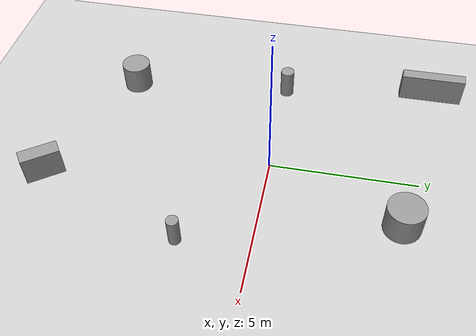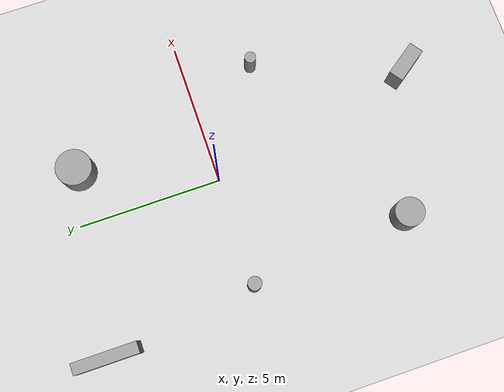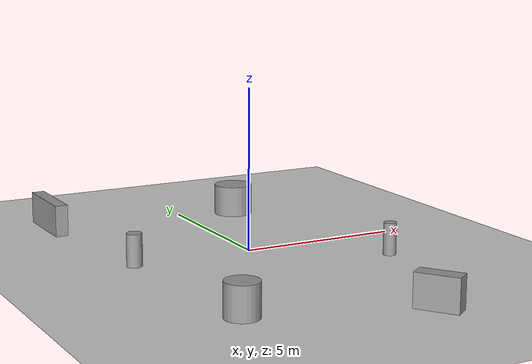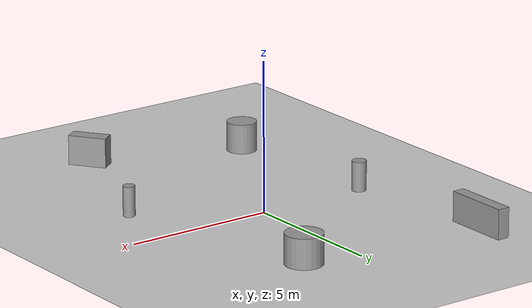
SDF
<sdf version="1.7">
 <world name="default">
  <light name="sun" type="directional">
   <pose>0 0 10 0 -0 0</pose>
   <diffuse>0.8 0.8 0.8 1</diffuse>
   <specular>0.2 0.2 0.2 1</specular>
   <attenuation>
    <range>1000</range>
    <constant>0.9</constant>
    <linear>0.01</linear>
    <quadratic>0.001</quadratic>
   </attenuation>
   <direction>-0.5 0.1 -0.9</direction>
   <spot><inner_angle>0</inner_angle><outer_angle>0</outer_angle><falloff>0</falloff></spot>
  </light>
  <model name="ground_plane">
   <static>1</static>
   <link name="link">
    <collision name="collision">
     <geometry><plane><normal>0 0 1</normal><size>100 100</size></plane></geometry>
     <surface>
      <contact><collide_bitmask>65535</collide_bitmask></contact>
      <friction><ode><mu>100</mu><mu2>50</mu2></ode></friction>
     </surface>
    </collision>
    <visual name="visual">
     <cast_shadows>0</cast_shadows>
     <geometry><plane><normal>0 0 1</normal><size>100 100</size></plane></geometry>
     <material>
      <script><uri>file://media/materials/scripts/gazebo.material</uri><name>Gazebo/Grey</name></script>
     </material>
    </visual>
   </link>
  </model>
  <gravity>0 0 -9.8</gravity>
  <magnetic_field>6e-06 2.3e-05 -4.2e-05</magnetic_field>
  <atmosphere type="adiabatic"/>
  <physics type="ode">
   <max_step_size>0.001</max_step_size>
   <real_time_factor>1</real_time_factor>
   <real_time_update_rate>1000</real_time_update_rate>
  </physics>
  <scene><ambient>0.4 0.4 0.4 1</ambient><background>0.7 0.7 0.7 1</background><shadows>1</shadows></scene>
  <spherical_coordinates>
   <surface_model>EARTH_WGS84</surface_model>
   <latitude_deg>0</latitude_deg>
   <longitude_deg>0</longitude_deg>
   <elevation>0</elevation>
   <heading_deg>0</heading_deg>
  </spherical_coordinates>
  <model name="unit_cylinder">
   <pose>3.56325 -2.34171 0.499994 0 -0 0</pose>
   <link name="link">
    <inertial>
     <mass>1</mass>
     <inertia><ixx>0.145833</ixx><ixy>0</ixy><ixz>0</ixz><iyy>0.145833</iyy><iyz>0</iyz><izz>0.125</izz></inertia>
    </inertial>
    <collision name="collision">
     <geometry><cylinder><radius>0.197194</radius><length>1</length></cylinder></geometry>
    </collision>
    <visual name="visual">
     <geometry><cylinder><radius>0.197194</radius><length>1</length></cylinder></geometry>
     <material>
      <script><name>Gazebo/Grey</name><uri>file://media/materials/scripts/gazebo.material</uri></script>
     </material>
    </visual>
   </link>
  </model>
  <model name="unit_cylinder_0">
   <pose>-3.7816 0.020751 0.5 -0 -0 -1e-06</pose>
   <link name="link">
    <inertial>
     <mass>1</mass>
     <inertia><ixx>0.145833</ixx><ixy>0</ixy><ixz>0</ixz><iyy>0.145833</iyy><iyz>0</iyz><izz>0.125</izz></inertia>
    </inertial>
    <collision name="collision">
     <geometry><cylinder><radius>0.237703</radius><length>1</length></cylinder></geometry>
    </collision>
    <visual name="visual">
     <geometry><cylinder><radius>0.237703</radius><length>1</length></cylinder></geometry>
     <material>
      <script><name>Gazebo/Grey</name><uri>file://media/materials/scripts/gazebo.material</uri></script>
     </material>
    </visual>
   </link>
  </model>
  <model name="unit_cylinder_1">
   <pose>-3.21181 -5.59049 0.499998 3e-06 -3e-06 0</pose>
   <link name="link">
    <inertial>
     <mass>1</mass>
     <inertia><ixx>0.145833</ixx><ixy>0</ixy><ixz>0</ixz><iyy>0.145833</iyy><iyz>0</iyz><izz>0.125</izz></inertia>
    </inertial>
    <collision name="collision">
     <geometry><cylinder><radius>0.5</radius><length>1</length></cylinder></geometry>
    </collision>
    <visual name="visual">
     <geometry><cylinder><radius>0.5</radius><length>1</length></cylinder></geometry>
     <material>
      <script><name>Gazebo/Grey</name><uri>file://media/materials/scripts/gazebo.material</uri></script>
     </material>
    </visual>
   </link>
  </model>
  <model name="unit_cylinder_2">
   <pose>1.81083 4.4882 0.499993 -5e-06 -5e-06 0</pose>
   <link name="link">
    <inertial>
     <mass>1</mass>
     <inertia><ixx>0.145833</ixx><ixy>0</ixy><ixz>0</ixz><iyy>0.145833</iyy><iyz>0</iyz><izz>0.125</izz></inertia>
    </inertial>
    <collision name="collision">
     <geometry><cylinder><radius>0.619605</radius><length>1</length></cylinder></geometry>
    </collision>
    <visual name="visual">
     <geometry><cylinder><radius>0.619605</radius><length>1</length></cylinder></geometry>
     <material>
      <script><name>Gazebo/Grey</name><uri>file://media/materials/scripts/gazebo.material</uri></script>
     </material>
    </visual>
   </link>
  </model>
  <model name="unit_box">
   <pose>-4.48107 5.29501 0.49997 -2.7e-05 -0 0.000182</pose>
   <link name="link">
    <inertial>
     <mass>1</mass>
     <inertia>
      <ixx>0.166667</ixx>
      <ixy>0</ixy>
      <ixz>0</ixz>
      <iyy>0.166667</iyy>
      <iyz>0</iyz>
      <izz>0.166667</izz>
     </inertia>
    </inertial>
    <collision name="collision"><geometry><box><size>0.40863 2.21696 1</size></box></geometry></collision>
    <visual name="visual">
     <geometry><box><size>0.40863 2.21696 1</size></box></geometry>
     <material>
      <script><name>Gazebo/Grey</name><uri>file://media/materials/scripts/gazebo.material</uri></script>
     </material>
    </visual>
   </link>
  </model>
  <model name="unit_box_0">
   <pose>1.69022 -7.34875 0.5 0 -0 0.62501</pose>
   <link name="link">
    <inertial>
     <mass>1</mass>
     <inertia>
      <ixx>0.166667</ixx>
      <ixy>0</ixy>
      <ixz>0</ixz>
      <iyy>0.166667</iyy>
      <iyz>0</iyz>
      <izz>0.166667</izz>
     </inertia>
    </inertial>
    <collision name="collision"><geometry><box><size>0.515265 1.28529 1</size></box></geometry></collision>
    <visual name="visual">
     <geometry><box><size>0.515265 1.28529 1</size></box></geometry>
     <material>
      <script><name>Gazebo/Grey</name><uri>file://media/materials/scripts/gazebo.material</uri></script>
     </material>
    </visual>
   </link>
  </model>
 </world>
</sdf>
